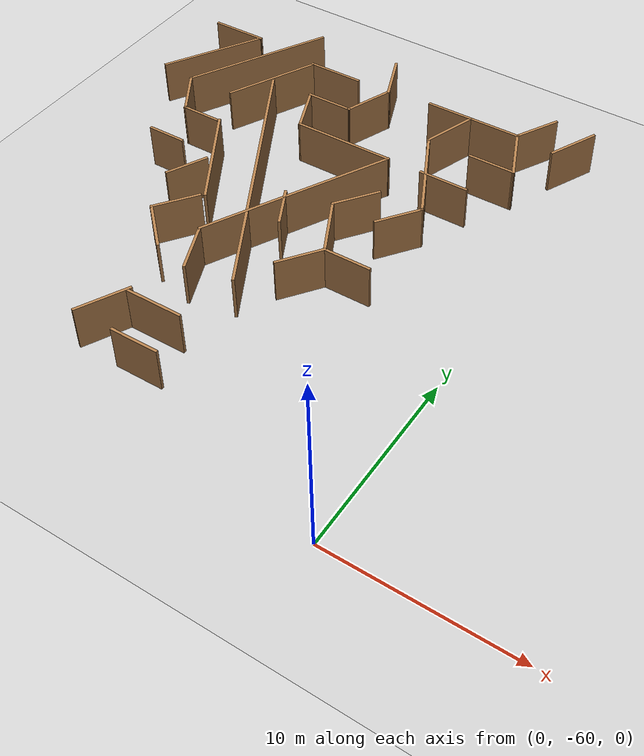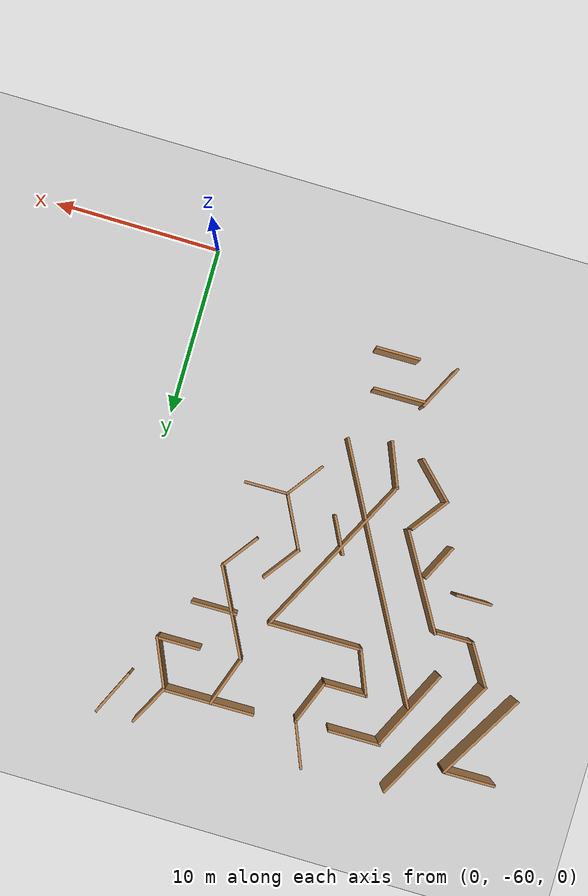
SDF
<sdf version="1.6">
 <world name="default">
  <model name="ground_plane">
   <static>1</static>
   <link name="link">
    <collision name="collision">
     <geometry><plane><normal>0 0 1</normal><size>100 100</size></plane></geometry>
     <surface><friction><ode><mu>100</mu><mu2>50</mu2></ode></friction></surface>
    </collision>
    <visual name="visual">
     <cast_shadows>0</cast_shadows>
     <geometry><plane><normal>0 0 1</normal><size>100 100</size></plane></geometry>
     <material>
      <script><uri>file://media/materials/scripts/gazebo.material</uri><name>Gazebo/Grey</name></script>
     </material>
    </visual>
   </link>
  </model>
  <model name="tr_maze_4_clone_0">
   <pose>-12.3821 -44.6159 0 0 0 -3.13106</pose>
   <link name="Wall_0">
    <collision name="Wall_0_Collision">
     <geometry><box><size>2.92308 0.15 2.5</size></box></geometry>
     <pose>0 0 1.25 0 -0 0</pose>
    </collision>
    <visual name="Wall_0_Visual">
     <pose>0 0 1.25 0 -0 0</pose>
     <geometry><box><size>2.92308 0.15 2.5</size></box></geometry>
     <material>
      <script><uri>file://media/materials/scripts/gazebo.material</uri><name>Gazebo/Wood</name></script>
      <ambient>1 1 1 1</ambient>
     </material>
    </visual>
    <pose>-11.0014 -10.9997 0 0 -0 1.12328</pose>
   </link>
   <link name="Wall_10">
    <collision name="Wall_10_Collision">
     <geometry><box><size>3.12321 0.15 2.5</size></box></geometry>
     <pose>0 0 1.25 0 -0 0</pose>
    </collision>
    <visual name="Wall_10_Visual">
     <pose>0 0 1.25 0 -0 0</pose>
     <geometry><box><size>3.12321 0.15 2.5</size></box></geometry>
     <material>
      <script><uri>file://media/materials/scripts/gazebo.material</uri><name>Gazebo/Wood</name></script>
      <ambient>1 1 1 1</ambient>
     </material>
    </visual>
    <pose>-4.90142 -8.64967 0 0 -0 1.22777</pose>
   </link>
   <link name="Wall_12">
    <collision name="Wall_12_Collision">
     <geometry><box><size>5.74017 0.15 2.5</size></box></geometry>
     <pose>0 0 1.25 0 -0 0</pose>
    </collision>
    <visual name="Wall_12_Visual">
     <pose>0 0 1.25 0 -0 0</pose>
     <geometry><box><size>5.74017 0.15 2.5</size></box></geometry>
     <material>
      <script><uri>file://media/materials/scripts/gazebo.material</uri><name>Gazebo/Wood</name></script>
      <ambient>0.996078 0.47451 0.0196078 1</ambient>
     </material>
    </visual>
    <pose>-5.65142 -4.74967 0 0 -0 2.03444</pose>
   </link>
   <link name="Wall_14">
    <collision name="Wall_14_Collision">
     <geometry><box><size>2.75 0.15 2.5</size></box></geometry>
     <pose>0 0 1.25 0 -0 0</pose>
    </collision>
    <visual name="Wall_14_Visual">
     <pose>0 0 1.25 0 -0 0</pose>
     <geometry><box><size>2.75 0.15 2.5</size></box></geometry>
     <material>
      <script><uri>file://media/materials/scripts/gazebo.material</uri><name>Gazebo/Wood</name></script>
      <ambient>0.996078 0.47451 0.0196078 1</ambient>
     </material>
    </visual>
    <pose>-6.70142 -4.74967 0 0 -0 3.14159</pose>
   </link>
   <link name="Wall_16">
    <collision name="Wall_16_Collision">
     <geometry><box><size>2.65 0.15 2.5</size></box></geometry>
     <pose>0 0 1.25 0 -0 0</pose>
    </collision>
    <visual name="Wall_16_Visual">
     <pose>0 0 1.25 0 -0 0</pose>
     <geometry><box><size>2.65 0.15 2.5</size></box></geometry>
     <material>
      <script><uri>file://media/materials/scripts/gazebo.material</uri><name>Gazebo/Wood</name></script>
      <ambient>0.996078 0.47451 0.0196078 1</ambient>
     </material>
    </visual>
    <pose>-6.15142 -1.24967 0 0 -0 0.927295</pose>
   </link>
   <link name="Wall_18">
    <collision name="Wall_18_Collision">
     <geometry><box><size>2.65 0.15 2.5</size></box></geometry>
     <pose>0 0 1.25 0 -0 0</pose>
    </collision>
    <visual name="Wall_18_Visual">
     <pose>0 0 1.25 0 -0 0</pose>
     <geometry><box><size>2.65 0.15 2.5</size></box></geometry>
     <material>
      <script><uri>file://media/materials/scripts/gazebo.material</uri><name>Gazebo/Wood</name></script>
      <ambient>0.996078 0.47451 0.0196078 1</ambient>
     </material>
    </visual>
    <pose>-3.65142 -1.24967 0 0 -0 0.927295</pose>
   </link>
   <link name="Wall_2">
    <collision name="Wall_2_Collision">
     <geometry><box><size>2.65599 0.15 2.5</size></box></geometry>
     <pose>0 0 1.25 0 -0 0</pose>
    </collision>
    <visual name="Wall_2_Visual">
     <pose>0 0 1.25 0 -0 0</pose>
     <geometry><box><size>2.65599 0.15 2.5</size></box></geometry>
     <material>
      <script><uri>file://media/materials/scripts/gazebo.material</uri><name>Gazebo/Wood</name></script>
      <ambient>1 1 1 1</ambient>
     </material>
    </visual>
    <pose>-8.80142 -11.1497 0 0 -0 1.07145</pose>
   </link>
   <link name="Wall_20">
    <collision name="Wall_20_Collision">
     <geometry><box><size>3.5041 0.15 2.5</size></box></geometry>
     <pose>0 0 1.25 0 -0 0</pose>
    </collision>
    <visual name="Wall_20_Visual">
     <pose>0 0 1.25 0 -0 0</pose>
     <geometry><box><size>3.5041 0.15 2.5</size></box></geometry>
     <material>
      <script><uri>file://media/materials/scripts/gazebo.material</uri><name>Gazebo/Wood</name></script>
      <ambient>0.996078 0.47451 0.0196078 1</ambient>
     </material>
    </visual>
    <pose>-3.65142 1.25033 0 0 -0 2.03444</pose>
   </link>
   <link name="Wall_22">
    <collision name="Wall_22_Collision">
     <geometry><box><size>2.65 0.15 2.5</size></box></geometry>
     <pose>0 0 1.25 0 -0 0</pose>
    </collision>
    <visual name="Wall_22_Visual">
     <pose>0 0 1.25 0 -0 0</pose>
     <geometry><box><size>2.65 0.15 2.5</size></box></geometry>
     <material>
      <script><uri>file://media/materials/scripts/gazebo.material</uri><name>Gazebo/Wood</name></script>
      <ambient>0.996078 0.47451 0.0196078 1</ambient>
     </material>
    </visual>
    <pose>-3.65142 3.75034 0 0 -0 0.927295</pose>
   </link>
   <link name="Wall_24">
    <collision name="Wall_24_Collision">
     <geometry><box><size>2.65 0.15 2.5</size></box></geometry>
     <pose>0 0 1.25 0 -0 0</pose>
    </collision>
    <visual name="Wall_24_Visual">
     <pose>0 0 1.25 0 -0 0</pose>
     <geometry><box><size>2.65 0.15 2.5</size></box></geometry>
     <material>
      <script><uri>file://media/materials/scripts/gazebo.material</uri><name>Gazebo/Wood</name></script>
      <ambient>0.996078 0.47451 0.0196078 1</ambient>
     </material>
    </visual>
    <pose>-5.65142 2.75034 0 0 -0 3.14159</pose>
   </link>
   <link name="Wall_26">
    <collision name="Wall_26_Collision">
     <geometry><box><size>2.84258 0.15 2.5</size></box></geometry>
     <pose>0 0 1.25 0 -0 0</pose>
    </collision>
    <visual name="Wall_26_Visual">
     <pose>0 0 1.25 0 -0 0</pose>
     <geometry><box><size>2.84258 0.15 2.5</size></box></geometry>
     <material>
      <script><uri>file://media/materials/scripts/gazebo.material</uri><name>Gazebo/Wood</name></script>
      <ambient>1 1 1 1</ambient>
     </material>
    </visual>
    <pose>0.098585 -10.9997 0 0 -0 1.9513</pose>
   </link>
   <link name="Wall_28">
    <collision name="Wall_28_Collision">
     <geometry><box><size>2.84258 0.15 2.5</size></box></geometry>
     <pose>0 0 1.25 0 -0 0</pose>
    </collision>
    <visual name="Wall_28_Visual">
     <pose>0 0 1.25 0 -0 0</pose>
     <geometry><box><size>2.84258 0.15 2.5</size></box></geometry>
     <material>
      <script><uri>file://media/materials/scripts/gazebo.material</uri><name>Gazebo/Wood</name></script>
      <ambient>1 1 1 1</ambient>
     </material>
    </visual>
    <pose>0.098585 -8.49967 0 0 -0 1.19029</pose>
   </link>
   <link name="Wall_30">
    <collision name="Wall_30_Collision">
     <geometry><box><size>2.65 0.15 2.5</size></box></geometry>
     <pose>0 0 1.25 0 -0 0</pose>
    </collision>
    <visual name="Wall_30_Visual">
     <pose>0 0 1.25 0 -0 0</pose>
     <geometry><box><size>2.65 0.15 2.5</size></box></geometry>
     <material>
      <script><uri>file://media/materials/scripts/gazebo.material</uri><name>Gazebo/Wood</name></script>
      <ambient>1 1 1 1</ambient>
     </material>
    </visual>
    <pose>1.84858 -7.24967 0 0 -0 0</pose>
   </link>
   <link name="Wall_32">
    <collision name="Wall_32_Collision">
     <geometry><box><size>2.84258 0.15 2.5</size></box></geometry>
     <pose>0 0 1.25 0 -0 0</pose>
    </collision>
    <visual name="Wall_32_Visual">
     <pose>0 0 1.25 0 -0 0</pose>
     <geometry><box><size>2.84258 0.15 2.5</size></box></geometry>
     <material>
      <script><uri>file://media/materials/scripts/gazebo.material</uri><name>Gazebo/Wood</name></script>
      <ambient>1 1 1 1</ambient>
     </material>
    </visual>
    <pose>2.59858 -5.99967 0 0 -0 1.9513</pose>
   </link>
   <link name="Wall_34">
    <collision name="Wall_34_Collision">
     <geometry><box><size>5.65 0.15 2.5</size></box></geometry>
     <pose>0 0 1.25 0 -0 0</pose>
    </collision>
    <visual name="Wall_34_Visual">
     <pose>0 0 1.25 0 -0 0</pose>
     <geometry><box><size>5.65 0.15 2.5</size></box></geometry>
     <material>
      <script><uri>file://media/materials/scripts/gazebo.material</uri><name>Gazebo/Wood</name></script>
      <ambient>1 1 1 1</ambient>
     </material>
    </visual>
    <pose>-0.651415 -4.74967 0 0 -0 3.14159</pose>
   </link>
   <link name="Wall_36">
    <collision name="Wall_36_Collision">
     <geometry><box><size>10.8855 0.15 2.5</size></box></geometry>
     <pose>0 0 1.25 0 -0 0</pose>
    </collision>
    <visual name="Wall_36_Visual">
     <pose>0 0 1.25 0 -0 0</pose>
     <geometry><box><size>10.8855 0.15 2.5</size></box></geometry>
     <material>
      <script><uri>file://media/materials/scripts/gazebo.material</uri><name>Gazebo/Wood</name></script>
      <ambient>0.996078 0.47451 0.0196078 1</ambient>
     </material>
    </visual>
    <pose>-0.901415 0.000335 0 0 -0 1.08632</pose>
   </link>
   <link name="Wall_38">
    <collision name="Wall_38_Collision">
     <geometry><box><size>2.38607 0.15 2.5</size></box></geometry>
     <pose>0 0 1.25 0 -0 0</pose>
    </collision>
    <visual name="Wall_38_Visual">
     <pose>0 0 1.25 0 -0 0</pose>
     <geometry><box><size>2.38607 0.15 2.5</size></box></geometry>
     <material>
      <script><uri>file://media/materials/scripts/gazebo.material</uri><name>Gazebo/Wood</name></script>
      <ambient>0.996078 0.47451 0.0196078 1</ambient>
     </material>
    </visual>
    <pose>-0.901415 1.25033 0 0 -0 2.03444</pose>
   </link>
   <link name="Wall_4">
    <collision name="Wall_4_Collision">
     <geometry><box><size>5.45 0.15 2.5</size></box></geometry>
     <pose>0 0 1.25 0 -0 0</pose>
    </collision>
    <visual name="Wall_4_Visual">
     <pose>0 0 1.25 0 -0 0</pose>
     <geometry><box><size>5.45 0.15 2.5</size></box></geometry>
     <material>
      <script><uri>file://media/materials/scripts/gazebo.material</uri><name>Gazebo/Wood</name></script>
      <ambient>1 1 1 1</ambient>
     </material>
    </visual>
    <pose>-5.55142 -10.0497 0 0 -0 0</pose>
   </link>
   <link name="Wall_40">
    <collision name="Wall_40_Collision">
     <geometry><box><size>2.84258 0.15 2.5</size></box></geometry>
     <pose>0 0 1.25 0 -0 0</pose>
    </collision>
    <visual name="Wall_40_Visual">
     <pose>0 0 1.25 0 -0 0</pose>
     <geometry><box><size>2.84258 0.15 2.5</size></box></geometry>
     <material>
      <script><uri>file://media/materials/scripts/gazebo.material</uri><name>Gazebo/Wood</name></script>
      <ambient>0.996078 0.47451 0.0196078 1</ambient>
     </material>
    </visual>
    <pose>1.09858 6.00033 0 0 -0 1.9513</pose>
   </link>
   <link name="Wall_42">
    <collision name="Wall_42_Collision">
     <geometry><box><size>16.0324 0.15 2.5</size></box></geometry>
     <pose>0 0 1.25 0 -0 0</pose>
    </collision>
    <visual name="Wall_42_Visual">
     <pose>0 0 1.25 0 -0 0</pose>
     <geometry><box><size>16.0324 0.15 2.5</size></box></geometry>
     <material>
      <script><uri>file://media/materials/scripts/gazebo.material</uri><name>Gazebo/Wood</name></script>
      <ambient>0.996078 0.47451 0.0196078 1</ambient>
     </material>
    </visual>
    <pose>1.84858 -0.249665 0 0 -0 2.06261</pose>
   </link>
   <link name="Wall_44">
    <collision name="Wall_44_Collision">
     <geometry><box><size>5.29296 0.15 2.5</size></box></geometry>
     <pose>0 0 1.25 0 -0 0</pose>
    </collision>
    <visual name="Wall_44_Visual">
     <pose>0 0 1.25 0 -0 0</pose>
     <geometry><box><size>5.29296 0.15 2.5</size></box></geometry>
     <material>
      <script><uri>file://media/materials/scripts/gazebo.material</uri><name>Gazebo/Wood</name></script>
      <ambient>1 1 1 1</ambient>
     </material>
    </visual>
    <pose>5.74858 -7.34966 0 0 -0 1.10715</pose>
   </link>
   <link name="Wall_46">
    <collision name="Wall_46_Collision">
     <geometry><box><size>3.15 0.15 2.5</size></box></geometry>
     <pose>0 0 1.25 0 -0 0</pose>
    </collision>
    <visual name="Wall_46_Visual">
     <pose>0 0 1.25 0 -0 0</pose>
     <geometry><box><size>3.15 0.15 2.5</size></box></geometry>
     <material>
      <script><uri>file://media/materials/scripts/gazebo.material</uri><name>Gazebo/Wood</name></script>
      <ambient>1 1 1 1</ambient>
     </material>
    </visual>
    <pose>3.09858 -9.74967 0 0 -0 3.14159</pose>
   </link>
   <link name="Wall_48">
    <collision name="Wall_48_Collision">
     <geometry><box><size>8.47406 0.15 2.5</size></box></geometry>
     <pose>0 0 1.25 0 -0 0</pose>
    </collision>
    <visual name="Wall_48_Visual">
     <pose>0 0 1.25 0 -0 0</pose>
     <geometry><box><size>8.47406 0.15 2.5</size></box></geometry>
     <material>
      <script><uri>file://media/materials/scripts/gazebo.material</uri><name>Gazebo/Wood</name></script>
      <ambient>1 1 1 1</ambient>
     </material>
    </visual>
    <pose>7.59858 -8.59966 0 0 -0 1.06953</pose>
   </link>
   <link name="Wall_50">
    <collision name="Wall_50_Collision">
     <geometry><box><size>2.84258 0.15 2.5</size></box></geometry>
     <pose>0 0 1.25 0 -0 0</pose>
    </collision>
    <visual name="Wall_50_Visual">
     <pose>0 0 1.25 0 -0 0</pose>
     <geometry><box><size>2.84258 0.15 2.5</size></box></geometry>
     <material>
      <script><uri>file://media/materials/scripts/gazebo.material</uri><name>Gazebo/Wood</name></script>
      <ambient>1 1 1 1</ambient>
     </material>
    </visual>
    <pose>8.89858 -3.79967 0 0 -0 2.11759</pose>
   </link>
   <link name="Wall_52">
    <collision name="Wall_52_Collision">
     <geometry><box><size>2.25 0.15 2.5</size></box></geometry>
     <pose>0 0 1.25 0 -0 0</pose>
    </collision>
    <visual name="Wall_52_Visual">
     <pose>0 0 1.25 0 -0 0</pose>
     <geometry><box><size>2.25 0.15 2.5</size></box></geometry>
     <material>
      <script><uri>file://media/materials/scripts/gazebo.material</uri><name>Gazebo/Wood</name></script>
      <ambient>1 1 1 1</ambient>
     </material>
    </visual>
    <pose>7.14858 -2.64966 0 0 -0 3.14159</pose>
   </link>
   <link name="Wall_54">
    <collision name="Wall_54_Collision">
     <geometry><box><size>6.25 0.15 2.5</size></box></geometry>
     <pose>0 0 1.25 0 -0 0</pose>
    </collision>
    <visual name="Wall_54_Visual">
     <pose>0 0 1.25 0 -0 0</pose>
     <geometry><box><size>6.25 0.15 2.5</size></box></geometry>
     <material>
      <script><uri>file://media/materials/scripts/gazebo.material</uri><name>Gazebo/Wood</name></script>
      <ambient>1 1 1 1</ambient>
     </material>
    </visual>
    <pose>4.42709 -0.065034 0 0 -0 2.0944</pose>
   </link>
   <link name="Wall_56">
    <collision name="Wall_56_Collision">
     <geometry><box><size>2.65 0.15 2.5</size></box></geometry>
     <pose>0 0 1.25 0 -0 0</pose>
    </collision>
    <visual name="Wall_56_Visual">
     <pose>0 0 1.25 0 -0 0</pose>
     <geometry><box><size>2.65 0.15 2.5</size></box></geometry>
     <material>
      <script><uri>file://media/materials/scripts/gazebo.material</uri><name>Gazebo/Wood</name></script>
      <ambient>1 1 1 1</ambient>
     </material>
    </visual>
    <pose>3.84858 3.75034 0 0 -0 0.927295</pose>
   </link>
   <link name="Wall_58">
    <collision name="Wall_58_Collision">
     <geometry><box><size>2.97843 0.15 2.5</size></box></geometry>
     <pose>0 0 1.25 0 -0 0</pose>
    </collision>
    <visual name="Wall_58_Visual">
     <pose>0 0 1.25 0 -0 0</pose>
     <geometry><box><size>2.97843 0.15 2.5</size></box></geometry>
     <material>
      <script><uri>file://media/materials/scripts/gazebo.material</uri><name>Gazebo/Wood</name></script>
      <ambient>1 1 1 1</ambient>
     </material>
    </visual>
    <pose>3.59858 5.75033 0 0 -0 2.35619</pose>
   </link>
   <link name="Wall_6">
    <collision name="Wall_6_Collision">
     <geometry><box><size>3.19631 0.15 2.5</size></box></geometry>
     <pose>0 0 1.25 0 -0 0</pose>
    </collision>
    <visual name="Wall_6_Visual">
     <pose>0 0 1.25 0 -0 0</pose>
     <geometry><box><size>3.19631 0.15 2.5</size></box></geometry>
     <material>
      <script><uri>file://media/materials/scripts/gazebo.material</uri><name>Gazebo/Wood</name></script>
      <ambient>1 1 1 1</ambient>
     </material>
    </visual>
    <pose>-8.80142 -8.64967 0 0 -0 1.97569</pose>
   </link>
   <link name="Wall_60">
    <collision name="Wall_60_Collision">
     <geometry><box><size>3.15 0.15 2.5</size></box></geometry>
     <pose>0 0 1.25 0 -0 0</pose>
    </collision>
    <visual name="Wall_60_Visual">
     <pose>0 0 1.25 0 -0 0</pose>
     <geometry><box><size>3.15 0.15 2.5</size></box></geometry>
     <material>
      <script><uri>file://media/materials/scripts/gazebo.material</uri><name>Gazebo/Wood</name></script>
      <ambient>1 1 1 1</ambient>
     </material>
    </visual>
    <pose>10.0986 -10.2497 0 0 -0 3.14159</pose>
   </link>
   <link name="Wall_62">
    <collision name="Wall_62_Collision">
     <geometry><box><size>5.98095 0.15 2.5</size></box></geometry>
     <pose>0 0 1.25 0 -0 0</pose>
    </collision>
    <visual name="Wall_62_Visual">
     <pose>0 0 1.25 0 -0 0</pose>
     <geometry><box><size>5.98095 0.15 2.5</size></box></geometry>
     <material>
      <script><uri>file://media/materials/scripts/gazebo.material</uri><name>Gazebo/Wood</name></script>
      <ambient>1 1 1 1</ambient>
     </material>
    </visual>
    <pose>10.0986 -7.74967 0 0 -0 1.03038</pose>
   </link>
   <link name="Wall_64">
    <collision name="Wall_64_Collision">
     <geometry><box><size>2.15 0.15 2.5</size></box></geometry>
     <pose>0 0 1.25 0 -0 0</pose>
    </collision>
    <visual name="Wall_64_Visual">
     <pose>0 0 1.25 0 -0 0</pose>
     <geometry><box><size>2.15 0.15 2.5</size></box></geometry>
     <material>
      <script><uri>file://media/materials/scripts/gazebo.material</uri><name>Gazebo/Wood</name></script>
      <ambient>1 1 1 1</ambient>
     </material>
    </visual>
    <pose>7.59858 -0.249665 0 0 -0 3.14159</pose>
   </link>
   <link name="Wall_66">
    <collision name="Wall_66_Collision">
     <geometry><box><size>2.9678 0.15 2.5</size></box></geometry>
     <pose>0 0 1.25 0 -0 0</pose>
    </collision>
    <visual name="Wall_66_Visual">
     <pose>0 0 1.25 0 -0 0</pose>
     <geometry><box><size>2.9678 0.15 2.5</size></box></geometry>
     <material>
      <script><uri>file://media/materials/scripts/gazebo.material</uri><name>Gazebo/Wood</name></script>
      <ambient>0.996078 0.47451 0.0196078 1</ambient>
     </material>
    </visual>
    <pose>2.44859 11.0003 0 0 0 -2.05032</pose>
   </link>
   <link name="Wall_68">
    <collision name="Wall_68_Collision">
     <geometry><box><size>3.15 0.15 2.5</size></box></geometry>
     <pose>0 0 1.25 0 -0 0</pose>
    </collision>
    <visual name="Wall_68_Visual">
     <pose>0 0 1.25 0 -0 0</pose>
     <geometry><box><size>3.15 0.15 2.5</size></box></geometry>
     <material>
      <script><uri>file://media/materials/scripts/gazebo.material</uri><name>Gazebo/Wood</name></script>
      <ambient>0.996078 0.47451 0.0196078 1</ambient>
     </material>
    </visual>
    <pose>0.298584 9.95034 0 0 -0 3.14159</pose>
   </link>
   <link name="Wall_70">
    <collision name="Wall_70_Collision">
     <geometry><box><size>2.65 0.15 2.5</size></box></geometry>
     <pose>0 0 1.25 0 -0 0</pose>
    </collision>
    <visual name="Wall_70_Visual">
     <pose>0 0 1.25 0 -0 0</pose>
     <geometry><box><size>2.65 0.15 2.5</size></box></geometry>
     <material>
      <script><uri>file://media/materials/scripts/gazebo.material</uri><name>Gazebo/Wood</name></script>
      <ambient>1 1 1 1</ambient>
     </material>
    </visual>
    <pose>-0.451416 12.2503 0 0 -0 3.14159</pose>
   </link>
   <link name="Wall_72">
    <collision name="Wall_72_Collision">
     <geometry><box><size>2.38607 0.15 2.5</size></box></geometry>
     <pose>0 0 1.25 0 -0 0</pose>
    </collision>
    <visual name="Wall_72_Visual">
     <pose>0 0 1.25 0 -0 0</pose>
     <geometry><box><size>2.38607 0.15 2.5</size></box></geometry>
     <material>
      <script><uri>file://media/materials/scripts/gazebo.material</uri><name>Gazebo/Wood</name></script>
      <ambient>1 1 1 1</ambient>
     </material>
    </visual>
    <pose>5.09858 1.25033 0 0 -0 1.10715</pose>
   </link>
   <link name="Wall_8">
    <collision name="Wall_8_Collision">
     <geometry><box><size>2.65 0.15 2.5</size></box></geometry>
     <pose>0 0 1.25 0 -0 0</pose>
    </collision>
    <visual name="Wall_8_Visual">
     <pose>0 0 1.25 0 -0 0</pose>
     <geometry><box><size>2.65 0.15 2.5</size></box></geometry>
     <material>
      <script><uri>file://media/materials/scripts/gazebo.material</uri><name>Gazebo/Wood</name></script>
      <ambient>1 1 1 1</ambient>
     </material>
    </visual>
    <pose>-8.15142 -7.24967 0 0 -0 0</pose>
   </link>
   <static>1</static>
  </model>
 </world>
</sdf>
